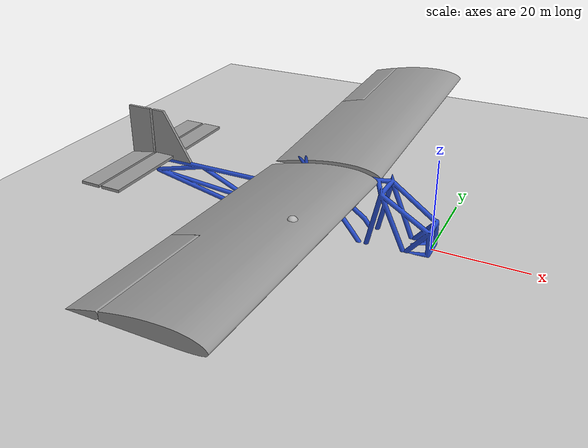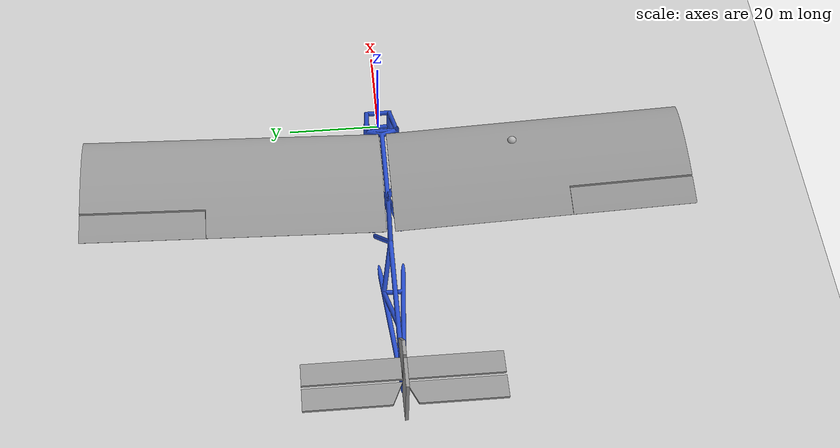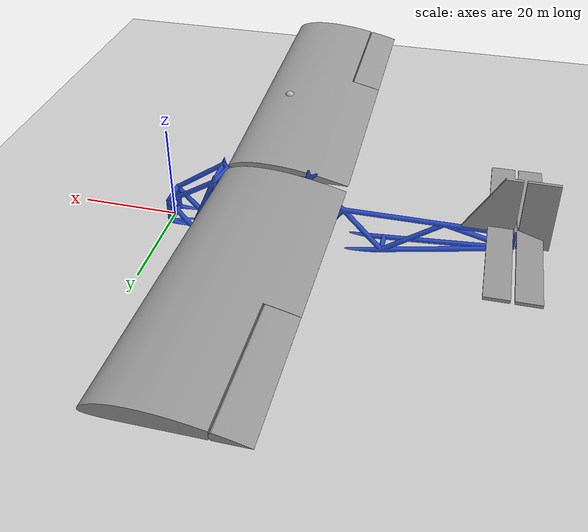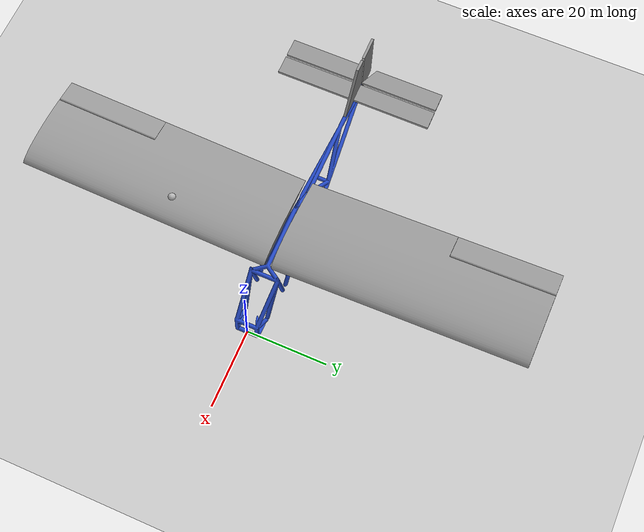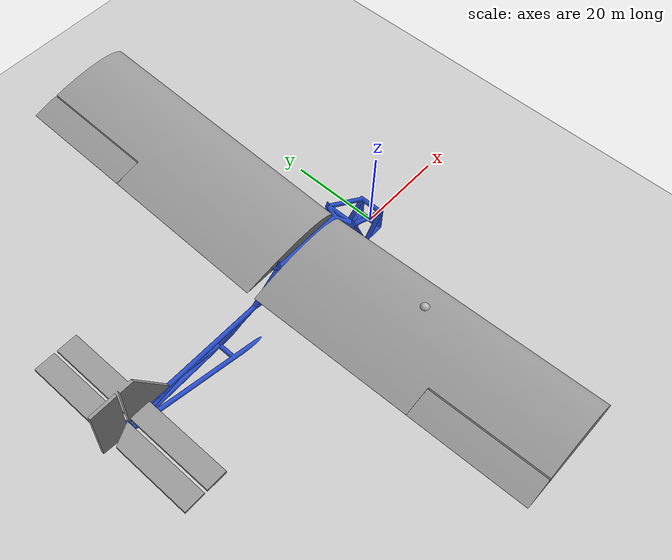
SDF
<?xml version="1.0" ?>
<sdf version="1.4">
  <world name="subscale">
    <gui>
       <plugin name="keyboard" filename="libSubscaleGUIPlugin.so"/>
      <camera name="user_camera">
        <pose> -100 0 20 0 0 0</pose>
      </camera>
    </gui>
    <include>
      <uri>model://sun</uri>
    </include>

      <model name="ground_plane">
      <static>true</static>
      <link name="link">
        <collision name="collision">
          <geometry>
            <plane>
              <normal>0 0 1</normal>
              <size>5000 5000</size>
            </plane>
          </geometry>
           <pose>0 0 -3 0 0 0</pose>
          <surface>
            <friction>
              <ode>
                <mu>1</mu>
                <mu2>1</mu2>
              </ode>
            </friction>
          </surface>
        </collision>
        <visual name="runway">
          <pose>700 0 0.1 0 0 0</pose>
          <cast_shadows>false</cast_shadows>
          <geometry>
            <plane>
              <normal>0 0 1</normal>
              <size>1829 45</size>
            </plane>
          </geometry>
          <material>
            <script>
              <uri>file://media/materials/scripts/gazebo.material</uri>
              <name>Gazebo/Runway</name>
            </script>
          </material>
        </visual>

        <visual name="grass">
          <pose>0 0 -0.1 0 0 0</pose>
          <cast_shadows>false</cast_shadows>
          <geometry>
            <plane>
              <normal>0 0 1</normal>
              <size>5000 5000</size>
            </plane>
          </geometry>
          <material>
            <script>
              <uri>file://media/materials/scripts/gazebo.material</uri>
              <name>Gazebo/Grass</name>
            </script>
          </material>
        </visual>

      </link>
    </model>

    <model name="subscale_model">
      <include>`
        <uri>model://subscale_model</uri>
      </include>

                 <plugin name="control" filename="libSubscalePlugin.so">
                  <left_aileron>subscale_model::left_aileron_joint</left_aileron>
                  <right_aileron>subscale_model::right_aileron_joint</right_aileron>
                  <left_elevator>subscale_model::left_elevator_joint</left_elevator>
                  <right_elevator>subscale_model::right_elevator_joint</right_elevator>
                  <rudder>subscale_model::rudder_joint</rudder>
                </plugin>

                <plugin name="right_wing" filename="libLiftDragPlugin.so">

                  <cp>-18 -27 16</cp>
                  <link_name>subscale_model::left_wing</link_name>

                  <a0>-0.10472</a0>
                  <cla>4.584</cla>
                  <cda>0.229</cda>
                  <cma>1.146</cma>
                  <alpha_stall>0.209</alpha_stall>
                  <cla_stall>-3.85</cla_stall>
                  <cda_stall>0.802</cda_stall>
                  <cma_stall>0</cma_stall>
                  <area>29</area>
                  <air_density>1.2041</air_density>
                  <forward>0 1 0</forward>
                  <upward>0 0 1</upward>

                  <control_joint_name>subscale_model::left_aileron_joint</control_joint_name>
                  <control_joint_rad_to_cl>-2.0</control_joint_rad_to_cl>

                </plugin>

                <plugin name="left_wing" filename="libLiftDragPlugin.so">
                  <cp>-18 27 16</cp>
                  <link_name>subscale_model::right_wing</link_name>
                  <a0>-0.10472</a0>
                  <cla>4.584</cla>
                  <cda>0.229</cda>
                  <cma>1.146</cma>
                  <alpha_stall>0.209</alpha_stall>
                  <cla_stall>-3.85</cla_stall>
                  <cda_stall>0.802</cda_stall>
                  <cma_stall>0</cma_stall>

                  <area>29</area>
                  <air_density>1.2041</air_density>
                  <forward>0 1 0</forward>
                  <upward>0 0 1</upward>
                  <control_joint_name>subscale_model::right_aileron_joint</control_joint_name>
                  <control_joint_rad_to_cl>-2.0</control_joint_rad_to_cl>
                </plugin>

                 <plugin name="relevator" filename="libLiftDragPlugin.so">

                 <cp>-64 0 8.509</cp>

                  <link_name>subscale_model::stabilizers</link_name>
                  <a0>0</a0>
                  <cla>2</cla>
                  <cda>0.3</cda>
                  <cma>0</cma>
                  <alpha_stall>0.15</alpha_stall>
                  <cla_stall>-1.5</cla_stall>
                  <cda_stall>0.6</cda_stall>
                  <cma_stall>0</cma_stall>

                  <area>2</area>
                  <air_density>1.2041</air_density>
                  <forward>0 1 0</forward>
                  <upward>0 0 1</upward>

                </plugin>

                <plugin name="rudder" filename="libLiftDragPlugin.so">
                  <a0>0</a0>
                  <cla>2</cla>
                  <cda>0.3</cda>
                  <cma>0</cma>
                  <alpha_stall>0.15</alpha_stall>
                  <cla_stall>-1.5</cla_stall>
                  <cda_stall>0.6</cda_stall>
                  <cma_stall>0</cma_stall>
                  <cp>-65.4 0 11.2</cp>
                  <area>1</area>
                  <air_density>1.2041</air_density>
                  <forward>0 1 0</forward>
                  <upward>0 0 1</upward>
                  <link_name>subscale_model::stabilizers</link_name>

                </plugin>

    </model>
  </world>
</sdf>

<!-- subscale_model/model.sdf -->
<sdf version='1.7'>
  <model name='subscale_model'>
  <pose> 0 0 0 0 0 1.57 </pose>
    <link name='fuselage'>
    <!--Clean up in future-->
      <inertial>
        <mass>0.001</mass>
        <inertia>
          <iyy>1000</iyy>
          <ixy>0.0</ixy>
          <ixx>9000</ixx>
          <ixz>0.0</ixz>
          <iyz>0.0</iyz>
          <izz>800</izz>
        </inertia>
        <pose>0.071 24.701 4.144 0 -0 0</pose>
      </inertial>
      <pose>0.010625 -0.006549 0 0 -0 0</pose>

      <visual name='visual'>
        <geometry>
          <mesh>
            <uri>/home/harish/Downloads/FCA-Simulation-main/Stls/Fuselage (1).stl</uri>
          </mesh>
        </geometry>
        <material>
          <lighting>1</lighting>
          <script>
            <uri>file://media/materials/scripts/gazebo.material</uri>
            <name>Gazebo/Blue</name>
          </script>
          </material>
      </visual>

            <visual name="cp_left_wing">
        <pose>-27 18 16 0 0 0</pose>
        <geometry>
          <sphere><radius>1</radius></sphere>
        </geometry>
      </visual>

      <collision name='collision'>
        <geometry>
          <mesh>
            <uri>/home/harish/Downloads/FCA-Simulation-main/Stls/Fuselage (1).stl</uri>
            <scale>1 1 1</scale>
          </mesh>
        </geometry>
      </collision>     <iyy>1000</iyy>
          <ixy>0.0</ixy>
          <ixx>9000</ixx>
          <ixz>0.0</ixz>
          <iyz>0.0</iyz>
          <izz>800</izz>
    </link>

    <link name='left_wing'>
      <inertial>
        <mass>30</mass>
        <inertia>
          <ixx>867</ixx>
          <ixy>-241</ixy>
          <ixz>485</ixz>
          <iyx>-241</iyx>
          <iyy>9025</iyy>
          <iyz>36</iyz>
          <izx>485</izx>
          <izy>36</izy>
          <izz>9810</izz>

        </inertia>
        <pose>-31.006 21.669 14.927  0 -0 0</pose>
      </inertial>
      <pose>-0.002431 0.000506 0 0 -0 0</pose>
      <visual name='visual'>
        <pose>0 0 0 0 -0 0</pose>
        <geometry>
          <mesh>
            <uri>/home/harish/Downloads/FCA-Simulation-main/Stls/Left Wing.stl</uri>
            <scale>1 1 1</scale>
          </mesh>
        </geometry>
        <material>
          <lighting>1</lighting>
          <script>
            <uri>file://media/materials/scripts/gazebo.material</uri>
            <name>Gazebo/Grey</name>
          </script>
          <shader type='pixel'/>
        </material>
        <transparency>0</transparency>     <iyy>1000</iyy>
          <ixy>0.0</ixy>
          <ixx>9000</ixx>
          <ixz>0.0</ixz>
          <iyz>0.0</iyz>
          <izz>800</izz>
        <cast_shadows>1</cast_shadows>
      </visual>
      <collision name='collision'>
        <laser_retro>0</laser_retro>
        <max_contacts>10</max_contacts>
        <pose>0 0 0 0 -0 0</pose>
        <geometry>
          <mesh>
            <uri>/home/harish/Downloads/FCA-Simulation-main/Stls/Left Wing.stl</uri>
            <scale>1 1 1</scale>
          </mesh>
        </geometry>

      </collision>
    </link>

   <link name='motor'>
    <inertial>
      <mass>80</mass>
      <inertia>
        <ixx>100</ixx>
        <ixy>0</ixy>
        <ixz>0</ixz>
        <iyy>100</iyy>
        <iyz>0</iyz>
        <izz>100</izz>
      </inertia>
      <pose>0 0 4.144 0 -0 0</pose>
    </inertial>
    <pose>0.010625 -0.006549 0 0 -0 0</pose>
  </link>

    <link name='right_wing'>
      <inertial>
        <mass>30</mass>
        <inertia>
          <ixx>867</ixx>
          <ixy>241</ixy>
          <ixz>-485</ixz>
          <iyx>241</iyx>
          <iyy>9025</iyy>
          <iyz>36</iyz>
          <izx>-485</izx>
          <izy>36</izy>
          <izz>9810</izz>
        </inertia>
        <pose>31.006 21.669 14.927  0 -0 0</pose>
      </inertial>
      <pose>-0.009494 0.005806 0 0 -0 0</pose>
      <visual name='visual'>
        <pose>0 0 0 0 -0 0</pose>
        <geometry>
          <mesh>
            <uri>/home/harish/Downloads/FCA-Simulation-main/Stls/Right Wing.stl</uri>
            <scale>1 1 1</scale>
          </mesh>
        </geometry>
        <material>
          <lighting>1</lighting>
          <script>
            <uri>file://media/materials/scripts/gazebo.material</uri>
            <name>Gazebo/Grey</name>
          </script>
          <shader type='pixel'/>
        </material>
        <transparency>0</transparency>
        <cast_shadows>1</cast_shadows>
      </visual>
      <collision name='collision'>
        <laser_retro>0</laser_retro>
        <max_contacts>10</max_contacts>
        <pose>0 0 0 0 -0 0</pose>
        <geometry>
          <mesh>
            <uri>/home/harish/Downloads/FCA-Simulation-main/Stls/Right Wing.stl</uri>
            <scale>1 1 1</scale>
          </mesh>
        </geometry>

      </collision>
    </link>

   <link name='stabilizers'>
      <inertial>
        <mass>12</mass>
        <inertia>
          <ixx>17</ixx>
          <ixy>0</ixy>
          <ixz>0</ixz>
          <iyy>178</iyy>
          <iyz>-0.3</iyz>
          <iyz>0</iyz>
          <izy>-0.3</izy>
          <izz>173</izz>
        </inertia>
        <pose>0 65.213 9.393 0 -0 0</pose>
      </inertial>
      <pose>-0.007465 -0.001724 0 0 -0 0</pose>
      <visual name='visual'>
        <pose>0 0 0 0 -0 0</pose>
        <geometry>
          <mesh>
            <uri>/home/harish/Downloads/FCA-Simulation-main/Stls/Stabalizers.stl</uri>
            <scale>1 1 1</scale>
          </mesh>
        </geometry>
        <material>
          <lighting>1</lighting>
          <script>
            <uri>file://media/materials/scripts/gazebo.material</uri>
            <name>Gazebo/Grey</name>
          </script>
          <shader type='pixel'/>
        </material>
        <transparency>0</transparency>
        <cast_shadows>1</cast_shadows>
      </visual>
      <collision name='collision'>
        <laser_retro>0</laser_retro>
        <max_contacts>10</max_contacts>
        <pose>0 0 0 0 -0 0</pose>
        <geometry>
          <mesh>
            <uri>/home/harish/Downloads/FCA-Simulation-main/Stls/Stabalizers.stl</uri>
            <scale>1 1 1</scale>
          </mesh>
        </geometry>
      </collision>
    </link>

  <link name='right_aileron'>
      <inertial>
        <mass>2</mass>
        <inertia>
          <ixx>2.806</ixx>
          <ixy>-0.01</ixy>
          <ixz>-3.35</ixz>
          <iyx>-0.015</iyx>
          <iyy>64.45</iyy>
          <iyz>0.29</iyz>
          <izx>-3.35</izx>
          <izy>0.29</izy>
          <izz>66.62</izz>

        </inertia>
        <pose>50.177 32.298  15.251 0 -0 0</pose>
      </inertial>
      <pose>-0.000807 -0.000738 0 0 -0 0</pose>
      <visual name='visual'>
        <pose>0 0 0 0 -0 0</pose>
        <geometry>
          <mesh>
            <uri>/home/harish/Downloads/FCA-Simulation-main/Stls/Right Aileron.stl</uri>
            <scale>1 1 1</scale>
          </mesh>
        </geometry>
        <material>
          <lighting>1</lighting>
          <script>
            <uri>file://media/materials/scripts/gazebo.material</uri>
            <name>Gazebo/Grey</name>
          </script>
          <shader type='pixel'/>
        </material>
        <transparency>0</transparency>
        <cast_shadows>1</cast_shadows>
      </visual>
      <collision name='collision'>
        <laser_retro>0</laser_retro>
        <max_contacts>10</max_contacts>
        <pose>0 0 0 0 -0 0</pose>
        <geometry>
          <mesh>
            <uri>/home/harish/Downloads/FCA-Simulation-main/Stls/Right Aileron.stl</uri>
            <scale>1 1 1</scale>
          </mesh>
        </geometry>

      </collision>
    </link>

     <link name='left_aileron'>
      <inertial>
        <mass>2</mass>
        <inertia>
          <ixx>2.806</ixx>
          <ixy>0.01</ixy>
          <ixz>3.35</ixz>
          <iyx>0.015</iyx>
          <iyy>64.45</iyy>
          <iyz>0.29</iyz>
          <izx>3.35</izx>
          <izy>0.29</izy>
          <izz>66.62</izz>

        </inertia>
        <pose>-50.177 32.298  15.251 0 -0 0</pose>
      </inertial>
      <pose>0.001717 0.004642 0 0 -0 0</pose>
      <visual name='visual'>
        <pose>0 0 0 0 -0 0</pose>
        <geometry>
          <mesh>
            <uri>/home/harish/Downloads/FCA-Simulation-main/Stls/Left Aileron.stl</uri>
            <scale>1 1 1</scale>
          </mesh>
        </geometry>
        <material>
          <lighting>1</lighting>
          <script>
            <uri>file://media/materials/scripts/gazebo.material</uri>
            <name>Gazebo/Grey</name>
          </script>
          <shader type='pixel'/>
        </material>
        <transparency>0</transparency>
        <cast_shadows>1</cast_shadows>
      </visual>
      <collision name='collision'>
        <laser_retro>0</laser_retro>
        <max_contacts>10</max_contacts>
        <pose>0 0 0 0 -0 0</pose>
        <geometry>
          <mesh>
            <uri>/home/harish/Downloads/FCA-Simulation-main/Stls/Left Aileron.stl</uri>
            <scale>1 1 1</scale>
          </mesh>
        </geometry>
      </collision>
    </link>

     <link name='right_elevator'>
      <inertial>
        <mass>1</mass>
        <inertia>
          <ixx>1</ixx>
          <ixy>-0.24</ixy>
          <ixz>-0.001</ixz>
          <iyx>-0.24</iyx>
          <iyy>16.76</iyy>
          <iyz>-0.007</iyz>
          <izx>-0.0017</izx>
          <izy>-0.007</izy>
          <izz>17.78</izz>
        </inertia>
        <pose>10.7 70.77 8.213 0 -0 0</pose>
      </inertial>
      <pose>-0.005405 -0.001289 0 0 -0 0</pose>
      <visual name='visual'>
        <pose>0 0 0 0 -0 0</pose>
        <geometry>
          <mesh>
            <uri>/home/harish/Downloads/FCA-Simulation-main/Stls/Right Elevator.stl</uri>
            <scale>1 1 1</scale>
          </mesh>
        </geometry>
        <material>
          <lighting>1</lighting>
          <script>
            <uri>file://media/materials/scripts/gazebo.material</uri>
            <name>Gazebo/Grey</name>
          </script>
          <shader type='pixel'/>
        </material>
        <transparency>0</transparency>
        <cast_shadows>1</cast_shadows>
      </visual>
      <collision name='collision'>
        <laser_retro>0</laser_retro>
        <max_contacts>10</max_contacts>
        <pose>0 0 0 0 -0 0</pose>
        <geometry>
          <mesh>
            <uri>/home/harish/Downloads/FCA-Simulation-main/Stls/Right Elevator.stl</uri>
            <scale>1 1 1</scale>
          </mesh>
        </geometry>
      </collision>
    </link>

    <link name='left_elevator'>
      <inertial>
        <mass>1</mass>
        <inertia>
          <ixx>1</ixx>
          <ixy>0.24</ixy>
          <ixz>0.001</ixz>
          <iyx>0.24</iyx>
          <iyy>16.76</iyy>
          <iyz>-0.007</iyz>
          <izx>0.0017</izx>
          <izy>-0.007</izy>
          <izz>17.78</izz>
        </inertia>
        <pose>-10.7 70.77 8.213 0 -0 0</pose>
      </inertial>
      <pose>-0.011106 0.004567 0 0 -0 0</pose>
      <visual name='visual'>
        <pose>0 0 0 0 -0 0</pose>
        <geometry>
          <mesh>
            <uri>/home/harish/Downloads/FCA-Simulation-main/Stls/Left Elevator.stl</uri>
            <scale>1 1 1</scale>
          </mesh>
        </geometry>
        <material>
          <lighting>1</lighting>
          <script>
            <uri>file://media/materials/scripts/gazebo.material</uri>
            <name>Gazebo/Grey</name>
          </script>
          <shader type='pixel'/>
        </material>
        <transparency>0</transparency>
        <cast_shadows>1</cast_shadows>
      </visual>
      <collision name='collision'>
        <laser_retro>0</laser_retro>
        <max_contacts>10</max_contacts>
        <pose>0 0 0 0 -0 0</pose>
        <geometry>
          <mesh>
            <uri>/home/harish/Downloads/FCA-Simulation-main/Stls/Left Elevator.stl</uri>
            <scale>1 1 1</scale>
          </mesh>
        </geometry>
      </collision>
    </link>

    <joint name = 'body3' type = 'fixed'>
    	<parent>fuselage</parent>
    	<child>right_wing</child>
    </joint>gazeb

    <joint name = 'body4' type = 'fixed'>
    	<parent>fuselage</parent>
    	<child>left_wing</child>
    </joint>

    <joint name = 'body5' type = 'fixed'>
    	<parent>fuselage</parent>
    	<child>stabilizers</child>
    </joint>

    <!--Joint for Right Aileron-->
    <joint name='right_aileron_joint' type = 'revolute'>
      <parent>right_wing</parent>
      <child>right_aileron</child>
      <pose>50 31 14.8 0 -0.052 0</pose> <!--TODO-->
      <axis>
        <xyz>1 0 0</xyz>
        <limit>
          <lower>-0.261667</lower>
          <upper>0.349066</upper>
          <velocity>0.61</velocity>
          <effort>1</effort>
        </limit>
      </axis>
    </joint>

    <!--Joint for Left Aileron-->
    <joint name='left_aileron_joint' type = 'revolute'>
      <parent>left_wing</parent>
      <child>left_aileron</child>
      <pose>-50 31 14.8 0 0.052 0</pose> <!--TODO-->
      <axis>
        <xyz>1 0 0</xyz>
        <limit>
          <lower>-0.261667</lower>
          <upper>0.349066</upper>
          <velocity>0.61</velocity> <!--Max velocity/effort? Also is effort similar to torqe or-->
          <effort>1</effort>
        </limit>
      </axis>
    </joint>

 <!--Joint for Right Elevator-->
    <joint name='left_elevator_joint' type = 'revolute'>
      <parent>stabilizers</parent>
      <child>left_elevator</child>
      <pose>-20 68.7 8.2 0 -0 0</pose> <!--TODO-where's the joint gonna be -->
      <axis>
        <xyz>1 0 0</xyz>
        <limit>
          <lower>-0.261667</lower>
          <upper>0.349066</upper>
          <velocity>0.61</velocity>
          <effort>1</effort>
        </limit>
      </axis>
    </joint>

       <link name='rudder'>
      <inertial>
        <mass>1</mass>
        <inertia>
          <ixx>13</ixx>
          <iyy>11</iyy>
          <iyz>-0.12</iyz>
          <izy>-0.12</izy>
          <izz>1.81</izz>
        </inertia>
        <pose>0 71.795 11.808 0 -0 0</pose>
      </inertial>
      <pose>0.015142 -0.00431 0 0 -0 0</pose>
      <visual name='visual'>
        <pose>0 0 0 0 -0 0</pose>
        <geometry>
          <mesh>
            <uri>/home/harish/Downloads/FCA-Simulation-main/Stls/Rudder.stl</uri>
            <scale>1 1 1</scale>
          </mesh>
        </geometry>
        <material>
          <lighting>1</lighting>
          <script>
            <uri>file://media/materials/scripts/gazebo.material</uri>
            <name>Gazebo/Grey</name>
          </script>
          <shader type='pixel'/>
        </material>
        <transparency>0</transparency>00
        <cast_shadows>1</cast_shadows>
      </visual>
      <collision name='collision'>
        <laser_retro>0</laser_retro>
        <max_contacts>10</max_contacts>
        <pose>0 0 0 0 -0 0</pose>
        <geometry>
          <mesh>
            <uri>/home/harish/Downloads/FCA-Simulation-main/Stls/Rudder.stl</uri>
            <scale>1 1 1</scale>
          </mesh>
        </geometry>

      </collision>
    </link>
   <!--Joint for Right Elevator-->
    <joint name='right_elevator_joint' type = 'revolute'>
      <parent>stabilizers</parent>
      <child>right_elevator</child>
      <pose>20 68.7 8.2 0 -0 0</pose> <!--TODO-->
      <axis>00
        <xyz>1 0 0</xyz>
        <limit>
          <lower>-0.261667</lower>00
          <upper>0.349066</upper>
          <velocity>0.61</velocity>
          <effort>1</effort>
        </limit>
      </axis>
    </joint>

    <!--Joint for Rudder-->
    <joint name='rudder_joint' type = 'revolute'>
      <parent>stabilizers</parent>
      <child>rudder</child>
      <pose>0 69.1 19.3 0 -0 0</pose> <!--TODO-->
      <axis>
        <xyz>0 0 1</xyz>
        <limit>
          <lower>-0.35</lower>
          <upper>0.349066</upper>
          <velocity>0.61</velocity>
          <effort>1</effort>
        </limit>
      </axis>
    </joint>

        <joint name = 'motorjoint' type = 'fixed'>
    	<parent>fuselage</parent>
    	<child>motor</child>
    </joint>

    <static>0</static>
    <allow_auto_disable>1</allow_auto_disable>
  </model>
</sdf>
